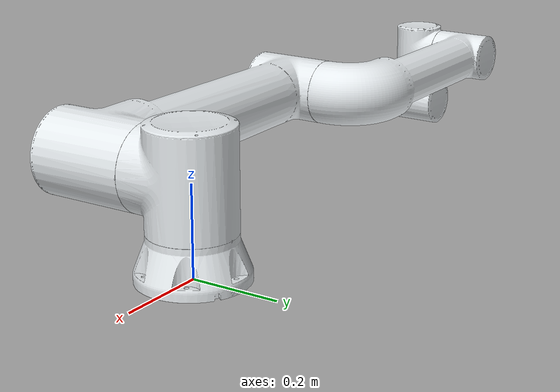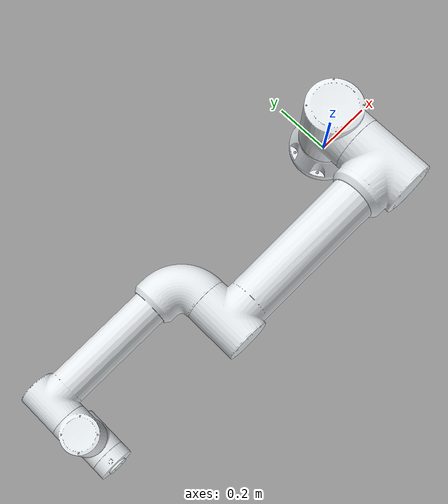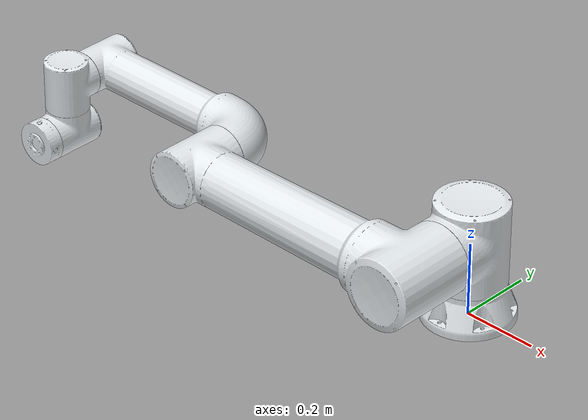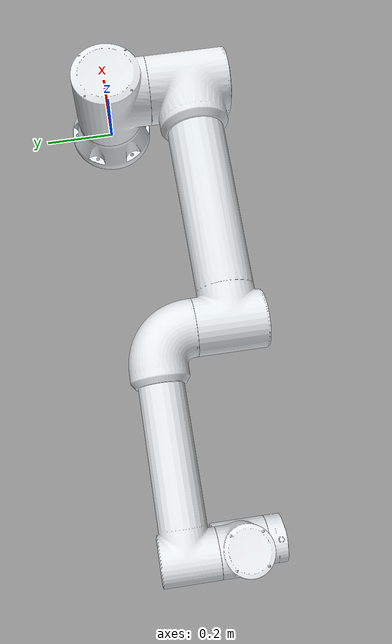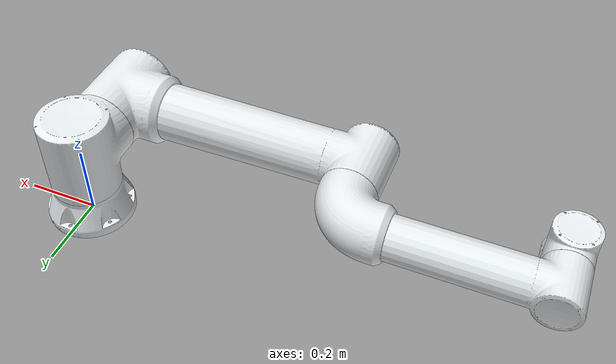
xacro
<?xml version="1.0"?>
<robot xmlns:xacro="http://www.ros.org/wiki/xacro" name="fairino30_v6_robot">
  <xacro:arg name="fairino_file" default="fairino.yaml" />
  <xacro:arg name="hardware_mode" default="real" />

  <!-- Import fairino30_v6_robot urdf file -->
  <xacro:include filename="$(find fairino_description)/urdf/fairino30_v6.urdf" />

  <!-- Import control_xacro -->
  <xacro:include filename="$(find fairino_description)/urdf/fairino.ros2_control.xacro" />

  <xacro:fairino_ros2_control
    name="fairino_ros2_control"
    fairino_file="$(arg fairino_file)"
    hardware_mode="$(arg hardware_mode)"
  />
</robot>

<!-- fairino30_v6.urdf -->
<robot
  name="fairino30_v6_robot">
  <link
    name="base_link">
    <inertial>
      <origin
        xyz="-2.164E-05 -6.0529E-05 0.043457"
        rpy="0 0 0" />
      <mass
        value="9.2502" />
      <inertia
        ixx="0.034499"
        ixy="1.668E-05"
        ixz="-7.4694E-06"
        iyy="0.034518"
        iyz="-2.0864E-05"
        izz="0.05496" />
    </inertial>
    <visual>
      <origin
        xyz="0 0 0"
        rpy="0 0 0" />
      <geometry>
        <mesh
          filename="package://fairino_description/meshes/fairino30_v6/base_link.STL" />
      </geometry>
      <material
        name="">
        <color
          rgba="0.89804 0.91765 0.92941 1" />
      </material>
    </visual>
    <collision>
      <origin
        xyz="0 0 0"
        rpy="0 0 0" />
      <geometry>
        <mesh
          filename="package://fairino_description/meshes/fairino30_v6/base_link.STL" />
      </geometry>
    </collision>
  </link>
  <link
    name="shoulder_link">
    <inertial>
      <origin
        xyz="-0.00022 -0.03739 0.00559"
        rpy="0 0 0" />
      <mass
        value="20.64" />
      <inertia
        ixx="0.11481499"
        ixy="-0.00018622"
        ixz="-0.00016442"
        iyy="0.09113206"
        iyz="0.00434134"
        izz="0.1110047" />
    </inertial>
    <visual>
      <origin
        xyz="0 0 0"
        rpy="0 0 0" />
      <geometry>
        <mesh
          filename="package://fairino_description/meshes/fairino30_v6/shoulder_link.STL" />
      </geometry>
      <material
        name="">
        <color
          rgba="0.89804 0.91765 0.92941 1" />
      </material>
    </visual>
    <collision>
      <origin
        xyz="0 0 0"
        rpy="0 0 0" />
      <geometry>
        <mesh
          filename="package://fairino_description/meshes/fairino30_v6/shoulder_link.STL" />
      </geometry>
    </collision>
  </link>
  <joint
    name="j1"
    type="revolute">
    <origin
      xyz="0 0 0"
      rpy="0 0 0" />
    <parent
      link="base_link" />
    <child
      link="shoulder_link" />
    <axis
      xyz="0 0 1" />
    <limit
      lower="-3.0543"
      upper="3.0543"
      effort="150"
      velocity="3.15" />
    <calibration
      rising="0"
      falling="0" />
    <dynamics
      damping="0"
      friction="0" />
    <safety_controller
      soft_lower_limit="-3.0543"
      soft_upper_limit="3.0543"
      k_position="15"
      k_velocity="10" />
  </joint>
  <link
    name="uppperarm_link">
    <inertial>
      <origin
        xyz="0.44073 0.00005 0.1987"
        rpy="0 0 0" />
      <mass
        value="36.37" />
      <inertia
        ixx="0.18277474"
        ixy="0.00190545"
        ixz="-0.0706475"
        iyy="3.78519224"
        iyz="0.00008997"
        izz="3.74631603" />
    </inertial>
    <visual>
      <origin
        xyz="0 0 0"
        rpy="0 0 0" />
      <geometry>
        <mesh
          filename="package://fairino_description/meshes/fairino30_v6/uppperarm_link.STL" />
      </geometry>
      <material
        name="">
        <color
          rgba="0.89804 0.91765 0.92941 1" />
      </material>
    </visual>
    <collision>
      <origin
        xyz="0 0 0"
        rpy="0 0 0" />
      <geometry>
        <mesh
          filename="package://fairino_description/meshes/fairino30_v6/uppperarm_link.STL" />
      </geometry>
    </collision>
  </link>
  <joint
    name="j2"
    type="revolute">
    <origin
      xyz="0 0 0.215"
      rpy="1.5708 0 0" />
    <parent
      link="shoulder_link" />
    <child
      link="uppperarm_link" />
    <axis
      xyz="0 0 1" />
    <limit
      lower="-4.6251"
      upper="1.4835"
      effort="150"
      velocity="3.15" />
    <calibration
      rising="0"
      falling="0" />
    <dynamics
      damping="0"
      friction="0" />
    <safety_controller
      soft_lower_limit="-4.6251"
      soft_upper_limit="1.4835"
      k_position="15"
      k_velocity="10" />
  </joint>
  <link
    name="forearm_link">
    <inertial>
      <origin
        xyz="0.18564 0.00025 0.04582"
        rpy="0 0 0" />
      <mass
        value="8.41" />
      <inertia
        ixx="0.02573737"
        ixy="0.00019482"
        ixz="0.00617393"
        iyy="0.44349764"
        iyz="0.00000118"
        izz="0.4416692" />
    </inertial>
    <visual>
      <origin
        xyz="0 0 0"
        rpy="0 0 0" />
      <geometry>
        <mesh
          filename="package://fairino_description/meshes/fairino30_v6/forearm_link.STL" />
      </geometry>
      <material
        name="">
        <color
          rgba="0.89804 0.91765 0.92941 1" />
      </material>
    </visual>
    <collision>
      <origin
        xyz="0 0 0"
        rpy="0 0 0" />
      <geometry>
        <mesh
          filename="package://fairino_description/meshes/fairino30_v6/forearm_link.STL" />
      </geometry>
    </collision>
  </link>
  <joint
    name="j3"
    type="revolute">
    <origin
      xyz="-0.7 0 0"
      rpy="0 0 0" />
    <parent
      link="uppperarm_link" />
    <child
      link="forearm_link" />
    <axis
      xyz="0 0 1" />
    <limit
      lower="-2.8274"
      upper="2.8274"
      effort="150"
      velocity="3.15" />
    <calibration
      rising="0"
      falling="0" />
    <dynamics
      damping="0"
      friction="0" />
    <safety_controller
      soft_lower_limit="-2.8274"
      soft_upper_limit="2.8274"
      k_position="15"
      k_velocity="10" />
  </joint>
  <link
    name="wrist1_link">
    <inertial>
      <origin
        xyz="0.00023 -0.00229 0.0186"
        rpy="0 0 0" />
      <mass
        value="4.64" />
      <inertia
        ixx="0.00931779"
        ixy="-0.00003338"
        ixz="-0.00005091"
        iyy="0.00924867"
        iyz="0.00022263"
        izz="0.00776467" />
    </inertial>
    <visual>
      <origin
        xyz="0 0 0"
        rpy="0 0 0" />
      <geometry>
        <mesh
          filename="package://fairino_description/meshes/fairino30_v6/wrist1_link.STL" />
      </geometry>
      <material
        name="">
        <color
          rgba="0.89804 0.91765 0.92941 1" />
      </material>
    </visual>
    <collision>
      <origin
        xyz="0 0 0"
        rpy="0 0 0" />
      <geometry>
        <mesh
          filename="package://fairino_description/meshes/fairino30_v6/wrist1_link.STL" />
      </geometry>
    </collision>
  </link>
  <joint
    name="j4"
    type="revolute">
    <origin
      xyz="-0.536 0 0"
      rpy="0 0 0" />
    <parent
      link="forearm_link" />
    <child
      link="wrist1_link" />
    <axis
      xyz="0 0 1" />
    <limit
      lower="-4.6251"
      upper="1.4835"
      effort="28"
      velocity="3.2" />
    <calibration
      rising="0"
      falling="0" />
    <dynamics
      damping="0"
      friction="0" />
    <safety_controller
      soft_lower_limit="-4.6251"
      soft_upper_limit="1.4835"
      k_position="15"
      k_velocity="10" />
  </joint>
  <link
    name="wrist2_link">
    <inertial>
      <origin
        xyz="-0.00023 0.00229 0.0186"
        rpy="0 0 0" />
      <mass
        value="4.64" />
      <inertia
        ixx="0.00931779"
        ixy="-0.00003338"
        ixz="0.00005091"
        iyy="0.00924867"
        iyz="-0.00022263"
        izz="0.00776467" />
    </inertial>
    <visual>
      <origin
        xyz="0 0 0"
        rpy="0 0 0" />
      <geometry>
        <mesh
          filename="package://fairino_description/meshes/fairino30_v6/wrist2_link.STL" />
      </geometry>
      <material
        name="">
        <color
          rgba="0.89804 0.91765 0.92941 1" />
      </material>
    </visual>
    <collision>
      <origin
        xyz="0 0 0"
        rpy="0 0 0" />
      <geometry>
        <mesh
          filename="package://fairino_description/meshes/fairino30_v6/wrist2_link.STL" />
      </geometry>
    </collision>
  </link>
  <joint
    name="j5"
    type="revolute">
    <origin
      xyz="0 0 0.16601"
      rpy="1.5708 0 0" />
    <parent
      link="wrist1_link" />
    <child
      link="wrist2_link" />
    <axis
      xyz="0 0 1" />
    <limit
      lower="-3.0543"
      upper="3.0543"
      effort="28"
      velocity="3.2" />
    <calibration
      rising="0"
      falling="0" />
    <dynamics
      damping="0"
      friction="0" />
    <safety_controller
      soft_lower_limit="-3.0543"
      soft_upper_limit="3.0543"
      k_position="15"
      k_velocity="10" />
  </joint>
  <link
    name="wrist3_link">
    <inertial>
      <origin
        xyz="-0.00211 -0.00196 -0.02038"
        rpy="0 0 0" />
      <mass
        value="0.6" />
      <inertia
        ixx="0.00071709"
        ixy="-0.00000175"
        ixz="0.00000555"
        iyy="0.00071408"
        iyz="0.00000531"
        izz="0.00127558" />
    </inertial>
    <visual>
      <origin
        xyz="0 0 0"
        rpy="0 0 0" />
      <geometry>
        <mesh
          filename="package://fairino_description/meshes/fairino30_v6/wrist3_link.STL" />
      </geometry>
      <material
        name="">
        <color
          rgba="0.89804 0.91765 0.92941 1" />
      </material>
    </visual>
    <collision>
      <origin
        xyz="0 0 0"
        rpy="0 0 0" />
      <geometry>
        <mesh
          filename="package://fairino_description/meshes/fairino30_v6/wrist3_link.STL" />
      </geometry>
    </collision>
  </link>
  <joint
    name="j6"
    type="revolute">
    <origin
      xyz="0 0 0.138"
      rpy="-1.5708 0 0" />
    <parent
      link="wrist2_link" />
    <child
      link="wrist3_link" />
    <axis
      xyz="0 0 1" />
    <limit
      lower="-3.0543"
      upper="3.0543"
      effort="28"
      velocity="3.2" />
    <calibration
      rising="0"
      falling="0" />
    <dynamics
      damping="0"
      friction="0" />
    <safety_controller
      soft_lower_limit="-3.0543"
      soft_upper_limit="3.0543"
      k_position="15"
      k_velocity="10" />
  </joint>
</robot>
